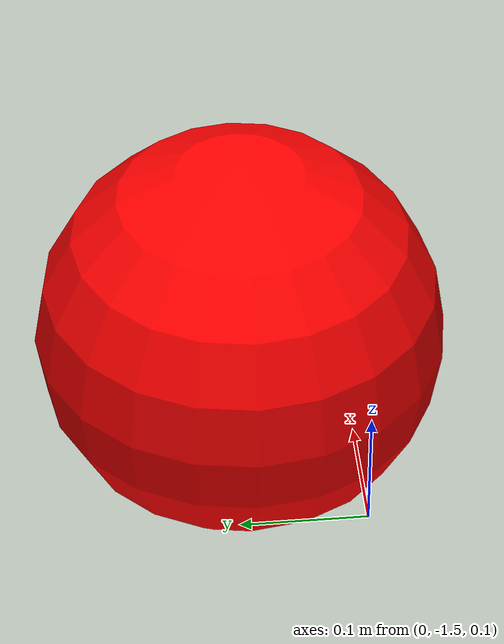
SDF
<?xml version="1.0"?>
<!-- 受控正例：近距离完整红球，仅用于公开相机链路回归。 -->
<sdf version="1.9"><model name="hw_suite_near_sphere"><static>true</static><pose>0 -1.40 0.30 0 0 0</pose><link name="link"><visual name="visual"><geometry><sphere><radius>0.15</radius></sphere></geometry><material><ambient>1 0 0 1</ambient><diffuse>1 0 0 1</diffuse></material></visual></link></model></sdf>
